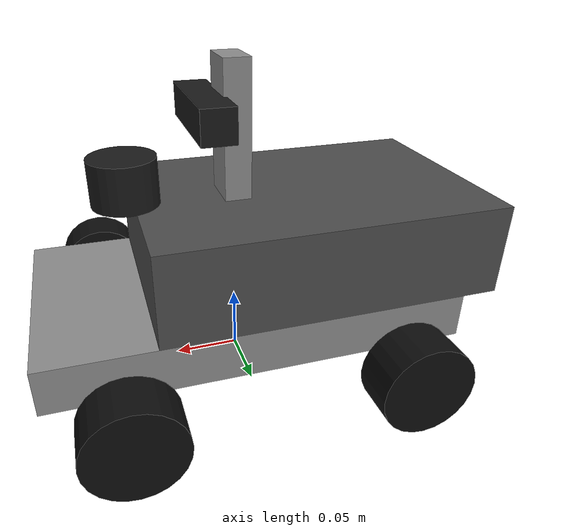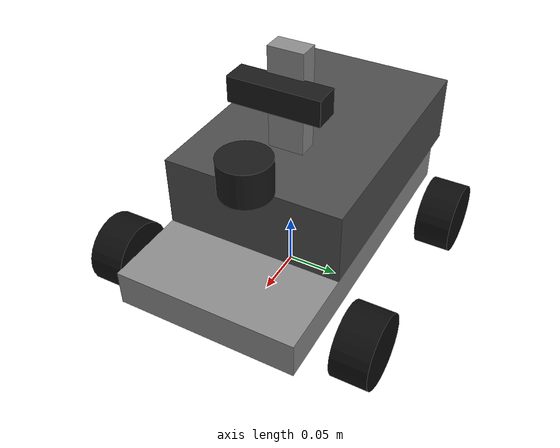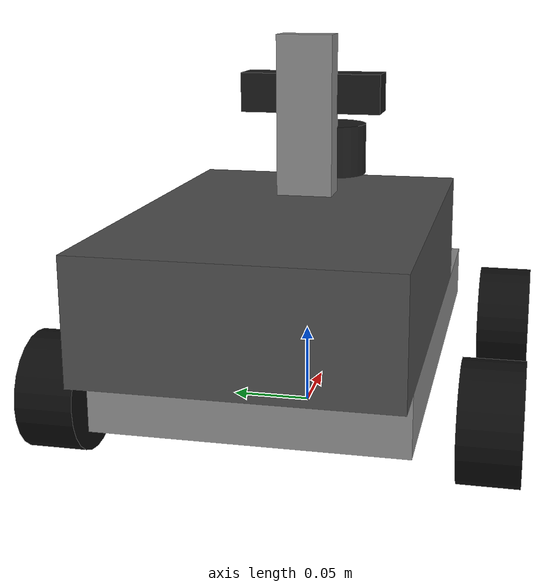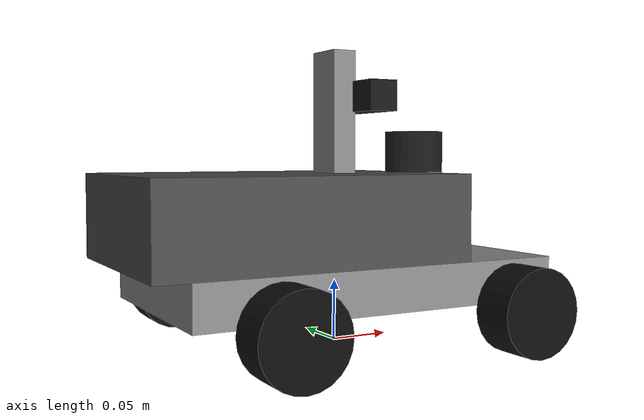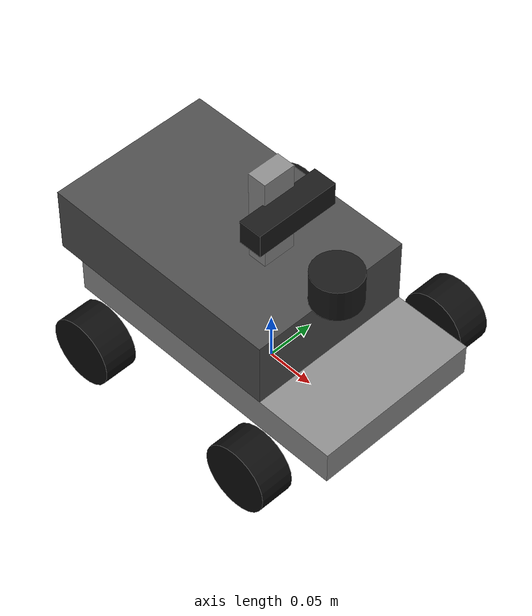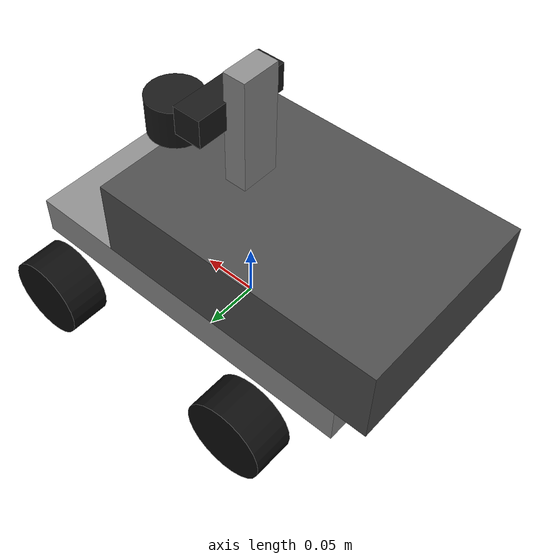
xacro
<?xml version="1.0"?>
<robot name="aic26_cobot" xmlns:xacro="http://wiki.ros.org/xacro">
  <xacro:property name="cm" value="0.01"/>

  <xacro:property name="wheel_radius" value="${3.5 * cm}"/>
  <xacro:property name="wheel_length" value="${3.5 * cm}"/>
  <xacro:property name="wheel_x" value="${10.0 * cm}"/>
  <xacro:property name="wheel_y" value="${12.5 * cm}"/>

  <xacro:property name="base_link_z" value="${wheel_radius}"/>
  <xacro:property name="footprint_z" value="${5.25 * cm - base_link_z}"/>
  <xacro:property name="case_z" value="${10.5 * cm - base_link_z}"/>
  <xacro:property name="laser_x" value="${8.0 * cm}"/>
  <xacro:property name="laser_z" value="${15.75 * cm - base_link_z}"/>
  <xacro:property name="camera_mount_z" value="${19.0 * cm - base_link_z}"/>
  <xacro:property name="camera_x" value="${2.0 * cm}"/>
  <xacro:property name="camera_z" value="${20.25 * cm - 19.0 * cm}"/>

  <material name="body_grey">
    <color rgba="0.55 0.55 0.55 1.0"/>
  </material>
  <material name="case_grey">
    <color rgba="0.30 0.30 0.30 1.0"/>
  </material>
  <material name="wheel_black">
    <color rgba="0.05 0.05 0.05 1.0"/>
  </material>
  <material name="sensor_black">
    <color rgba="0.10 0.10 0.10 1.0"/>
  </material>

  <xacro:macro name="box_part" params="name parent l w h xyz material">
    <link name="${name}">
      <visual>
        <geometry>
          <box size="${l} ${w} ${h}"/>
        </geometry>
        <material name="${material}"/>
      </visual>
      <collision>
        <geometry>
          <box size="${l} ${w} ${h}"/>
        </geometry>
      </collision>
    </link>
    <joint name="${name}_joint" type="fixed">
      <parent link="${parent}"/>
      <child link="${name}"/>
      <origin xyz="${xyz}" rpy="0 0 0"/>
    </joint>
  </xacro:macro>

  <xacro:macro name="cylinder_part" params="name parent r l xyz rpy material">
    <link name="${name}">
      <visual>
        <origin xyz="0 0 0" rpy="${rpy}"/>
        <geometry>
          <cylinder radius="${r}" length="${l}"/>
        </geometry>
        <material name="${material}"/>
      </visual>
      <collision>
        <origin xyz="0 0 0" rpy="${rpy}"/>
        <geometry>
          <cylinder radius="${r}" length="${l}"/>
        </geometry>
      </collision>
    </link>
    <joint name="${name}_joint" type="fixed">
      <parent link="${parent}"/>
      <child link="${name}"/>
      <origin xyz="${xyz}" rpy="0 0 0"/>
    </joint>
  </xacro:macro>

  <link name="base_footprint"/>

  <link name="base_link">
    <visual>
      <origin xyz="0 0 ${footprint_z}" rpy="0 0 0"/>
      <geometry>
        <box size="${31.5 * cm} ${17.5 * cm} ${3.5 * cm}"/>
      </geometry>
      <material name="body_grey"/>
    </visual>
    <collision>
      <origin xyz="0 0 ${footprint_z}" rpy="0 0 0"/>
      <geometry>
        <box size="${31.5 * cm} ${17.5 * cm} ${3.5 * cm}"/>
      </geometry>
    </collision>
  </link>
  <joint name="base_link_joint" type="fixed">
    <parent link="base_footprint"/>
    <child link="base_link"/>
    <origin xyz="0 0 ${base_link_z}" rpy="0 0 0"/>
  </joint>

  <xacro:property name="wheel_rpy" value="1.570796 0 0"/>
  <xacro:cylinder_part name="front_left_wheel" parent="base_link"
                       r="${wheel_radius}" l="${wheel_length}"
                       xyz="${wheel_x} ${wheel_y} 0" rpy="${wheel_rpy}"
                       material="wheel_black"/>
  <xacro:cylinder_part name="front_right_wheel" parent="base_link"
                       r="${wheel_radius}" l="${wheel_length}"
                       xyz="${wheel_x} ${-wheel_y} 0" rpy="${wheel_rpy}"
                       material="wheel_black"/>
  <xacro:cylinder_part name="back_left_wheel" parent="base_link"
                       r="${wheel_radius}" l="${wheel_length}"
                       xyz="${-wheel_x} ${wheel_y} 0" rpy="${wheel_rpy}"
                       material="wheel_black"/>
  <xacro:cylinder_part name="back_right_wheel" parent="base_link"
                       r="${wheel_radius}" l="${wheel_length}"
                       xyz="${-wheel_x} ${-wheel_y} 0" rpy="${wheel_rpy}"
                       material="wheel_black"/>

  <xacro:box_part name="case" parent="base_link"
                  l="${26.0 * cm}" w="${17.5 * cm}" h="${7.0 * cm}"
                  xyz="${-5.5 * cm} 0 ${case_z}" material="case_grey"/>

  <xacro:cylinder_part name="laser" parent="base_link"
                       r="${2.5 * cm}" l="${3.5 * cm}"
                       xyz="${laser_x} 0 ${laser_z}" rpy="0 0 0"
                       material="sensor_black"/>

  <xacro:box_part name="camera_mount" parent="base_link"
                  l="${2.0 * cm}" w="${3.5 * cm}" h="${10.0 * cm}"
                  xyz="0 0 ${camera_mount_z}" material="body_grey"/>

  <xacro:box_part name="camera" parent="camera_mount"
                  l="${2.5 * cm}" w="${9.0 * cm}" h="${2.5 * cm}"
                  xyz="${camera_x} 0 ${camera_z}" material="sensor_black"/>
  <link name="camera_optical_frame"/>
  <joint name="camera_optical_joint" type="fixed">
    <parent link="camera"/>
    <child link="camera_optical_frame"/>
    <origin xyz="0 0 0" rpy="-1.57079632679 0 -1.57079632679"/>
  </joint>

  <link name="imu_link"/>
  <joint name="imu_joint" type="fixed">
    <parent link="base_link"/>
    <child link="imu_link"/>
    <origin xyz="${-5.5 * cm} 0 ${case_z}" rpy="0 0 0"/>
  </joint>
</robot>
